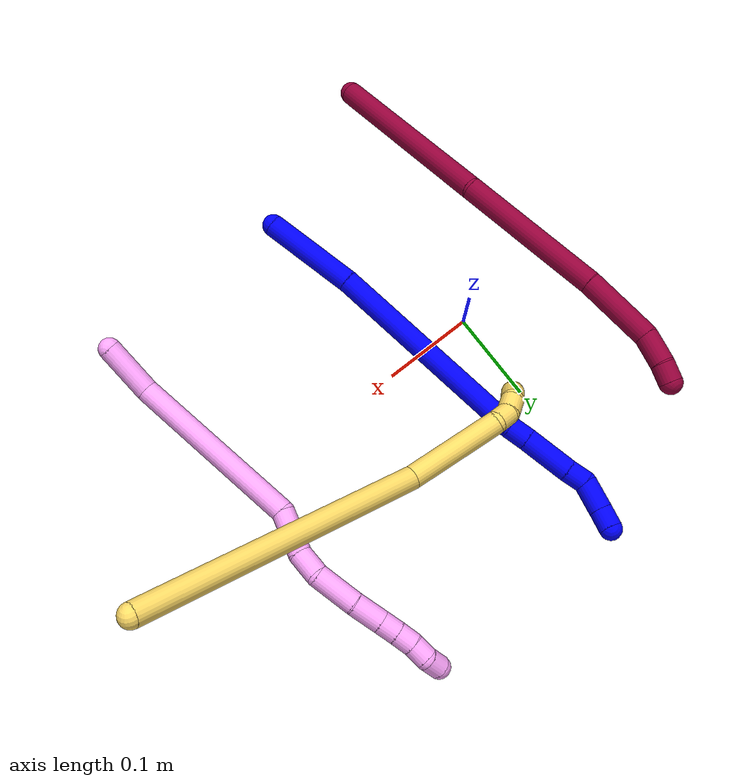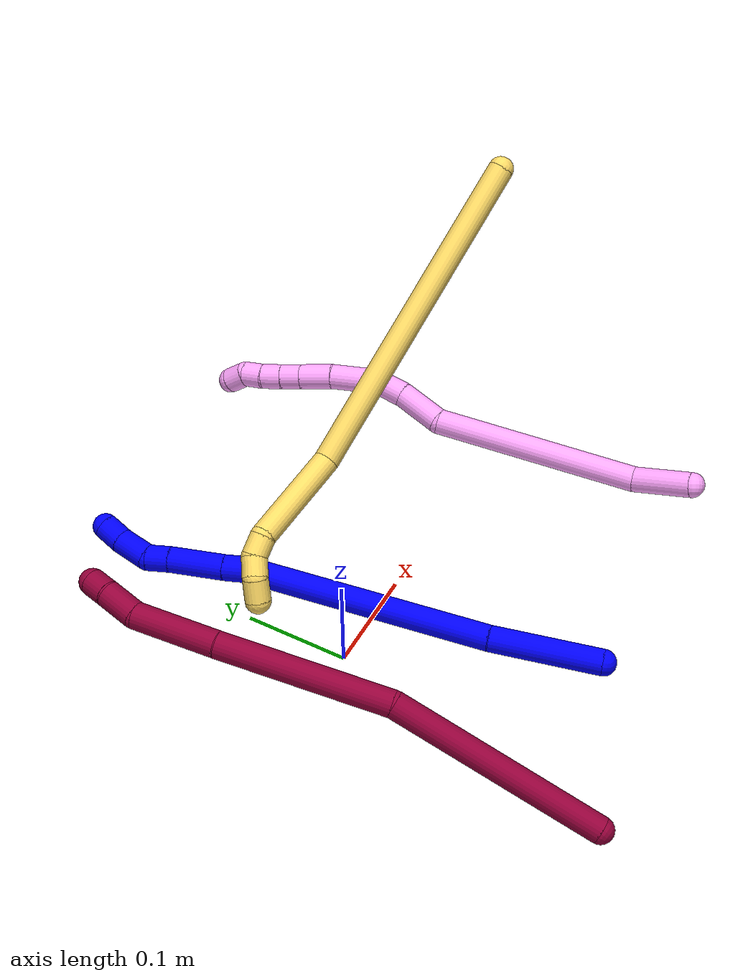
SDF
<sdf version="1.7">
 <world name="default">
  <model name="photoneo_s_sensor">
   <static>1</static>
   <pose>0 0 2 1.57079 1.57079 3.14159</pose>
   <link name="link">
    <inertial><mass>0.1</mass></inertial>
    <sensor name="sensor" type="depth">
     <update_rate>30</update_rate>
     <camera>
      <horizontal_fov>1.22</horizontal_fov>
      <image><width>1920</width><height>1200</height><format>B8G8R8</format></image>
      <clip><near>0.1</near><far>4</far></clip>
      <depth_camera><output>points</output></depth_camera>
     </camera>
     <plugin name="camera_plugin" filename="libgazebo_ros_depth_camera.so">
      <baseline>0.2</baseline>
      <alwaysOn>1</alwaysOn>
      <updateRate>0.0</updateRate>
      <cameraName>camera_ir</cameraName>
      <imageTopicName>/camera/color/image_raw</imageTopicName>
      <cameraInfoTopicName>/camera/color/camera_info</cameraInfoTopicName>
      <depthImageTopicName>/camera/depth/image_raw</depthImageTopicName>
      <depthImageCameraInfoTopicName>/camera/depth/camera_info</depthImageCameraInfoTopicName>
      <pointCloudTopicName>/camera/depth/points</pointCloudTopicName>
      <frameName>fr_optical</frameName>
      <pointCloudCutoff>0.1</pointCloudCutoff>
      <pointCloudCutoffMax>2.0</pointCloudCutoffMax>
      <distortionK1>0</distortionK1>
      <distortionK2>0</distortionK2>
      <distortionK3>0</distortionK3>
      <distortionT1>0</distortionT1>
      <distortionT2>0</distortionT2>
      <CxPrime>0</CxPrime>
      <Cx>0</Cx>
      <Cy>0</Cy>
      <focalLength>0</focalLength>
      <hackBaseline>0</hackBaseline>
     </plugin>
    </sensor>
   </link>
  </model>
  <model name="bin">
   <static>1</static>
   <link name="bottom">
    <collision name="collision-bottom">
     <pose>0 0 -0.01 0 -0 0</pose>
     <geometry><box><size>0.8 0.6 0.02</size></box></geometry>
     <surface>
      <friction><ode><mu>100</mu><mu2>100</mu2></ode></friction>
      <contact><collide_bitmask>65535</collide_bitmask></contact>
     </surface>
    </collision>
   </link>
   <link name="west_wall">
    <collision name="collision-west_wall">
     <pose>-0.41 0 0.1 0 -0 0</pose>
     <geometry><box><size>0.02 0.6 0.2</size></box></geometry>
     <surface>
      <friction><ode><mu>100</mu><mu2>100</mu2></ode></friction>
      <contact><collide_bitmask>65535</collide_bitmask></contact>
     </surface>
    </collision>
   </link>
   <link name="east_wall">
    <collision name="collision-east_wall">
     <pose>0.41 0 0.1 0 -0 0</pose>
     <geometry><box><size>0.02 0.6 0.2</size></box></geometry>
     <surface>
      <friction><ode><mu>100</mu><mu2>100</mu2></ode></friction>
      <contact><collide_bitmask>65535</collide_bitmask></contact>
     </surface>
    </collision>
   </link>
   <link name="south_wall">
    <collision name="collision-south_wall">
     <pose>0 -0.31 0.1 0 -0 0</pose>
     <geometry><box><size>0.8 0.02 0.2</size></box></geometry>
     <surface>
      <friction><ode><mu>100</mu><mu2>100</mu2></ode></friction>
      <contact><collide_bitmask>65535</collide_bitmask></contact>
     </surface>
    </collision>
   </link>
   <link name="north_wall">
    <collision name="collision-north_wall">
     <pose>0 0.31 0.1 0 -0 0</pose>
     <geometry><box><size>0.8 0.02 0.2</size></box></geometry>
     <surface>
      <friction><ode><mu>100</mu><mu2>100</mu2></ode></friction>
      <contact><collide_bitmask>65535</collide_bitmask></contact>
     </surface>
    </collision>
   </link>
  </model>
  <model name="1">
   <static>0</static>
   <link name="1">
    <collision name="collision-cylinder-e_1_1_4">
     <pose>-0.013646 0.050026 -0.011693 -1.80041 -0.259615 0.32622</pose>
     <geometry><cylinder><radius>0.0125</radius><length>0.106312</length></cylinder></geometry>
     <surface>
      <friction><ode><mu>1.16</mu><mu2>1.16</mu2><slip1>0</slip1><slip2>0</slip2></ode></friction>
      <contact><ode><kp>1e+06</kp><kd>1</kd><max_vel>0</max_vel><min_depth>0.001</min_depth></ode></contact>
     </surface>
    </collision>
    <visual name="visual-cylinder-e_1_1_4">
     <pose>-0.013646 0.050026 -0.011693 -1.80041 -0.259615 0.32622</pose>
     <geometry><cylinder><radius>0.0125</radius><length>0.106312</length></cylinder></geometry>
     <material><ambient>0 0 1 1</ambient></material>
    </visual>
    <collision name="collision-cylinder-e_2_4_5">
     <pose>-0.047855 0.214343 -0.050477 -1.80354 -0.173316 0.218873</pose>
     <geometry><cylinder><radius>0.0125</radius><length>0.238487</length></cylinder></geometry>
     <surface>
      <friction><ode><mu>1.16</mu><mu2>1.16</mu2><slip1>0</slip1><slip2>0</slip2></ode></friction>
      <contact><ode><kp>1e+06</kp><kd>1</kd><max_vel>0</max_vel><min_depth>0.001</min_depth></ode></contact>
     </surface>
    </collision>
    <visual name="visual-cylinder-e_2_4_5">
     <pose>-0.047855 0.214343 -0.050477 -1.80354 -0.173316 0.218873</pose>
     <geometry><cylinder><radius>0.0125</radius><length>0.238487</length></cylinder></geometry>
     <material><ambient>0 0 1 1</ambient></material>
    </visual>
    <collision name="collision-cylinder-e_3_5_6">
     <pose>-0.071881 0.338838 -0.08126 -1.918 -0.308883 0.436717</pose>
     <geometry><cylinder><radius>0.0125</radius><length>0.022782</length></cylinder></geometry>
     <surface>
      <friction><ode><mu>1.16</mu><mu2>1.16</mu2><slip1>0</slip1><slip2>0</slip2></ode></friction>
      <contact><ode><kp>1e+06</kp><kd>1</kd><max_vel>0</max_vel><min_depth>0.001</min_depth></ode></contact>
     </surface>
    </collision>
    <visual name="visual-cylinder-e_3_5_6">
     <pose>-0.071881 0.338838 -0.08126 -1.918 -0.308883 0.436717</pose>
     <geometry><cylinder><radius>0.0125</radius><length>0.022782</length></cylinder></geometry>
     <material><ambient>0 0 1 1</ambient></material>
    </visual>
    <collision name="collision-cylinder-e_4_6_7">
     <pose>-0.082468 0.373769 -0.093 -1.88543 -0.267415 0.366308</pose>
     <geometry><cylinder><radius>0.0125</radius><length>0.053924</length></cylinder></geometry>
     <surface>
      <friction><ode><mu>1.16</mu><mu2>1.16</mu2><slip1>0</slip1><slip2>0</slip2></ode></friction>
      <contact><ode><kp>1e+06</kp><kd>1</kd><max_vel>0</max_vel><min_depth>0.001</min_depth></ode></contact>
     </surface>
    </collision>
    <visual name="visual-cylinder-e_4_6_7">
     <pose>-0.082468 0.373769 -0.093 -1.88543 -0.267415 0.366308</pose>
     <geometry><cylinder><radius>0.0125</radius><length>0.053924</length></cylinder></geometry>
     <material><ambient>0 0 1 1</ambient></material>
    </visual>
    <collision name="collision-cylinder-e_5_7_8">
     <pose>-0.093314 0.408548 -0.104611 -1.91154 -0.335732 0.470872</pose>
     <geometry><cylinder><radius>0.0125</radius><length>0.022591</length></cylinder></geometry>
     <surface>
      <friction><ode><mu>1.16</mu><mu2>1.16</mu2><slip1>0</slip1><slip2>0</slip2></ode></friction>
      <contact><ode><kp>1e+06</kp><kd>1</kd><max_vel>0</max_vel><min_depth>0.001</min_depth></ode></contact>
     </surface>
    </collision>
    <visual name="visual-cylinder-e_5_7_8">
     <pose>-0.093314 0.408548 -0.104611 -1.91154 -0.335732 0.470872</pose>
     <geometry><cylinder><radius>0.0125</radius><length>0.022591</length></cylinder></geometry>
     <material><ambient>0 0 1 1</ambient></material>
    </visual>
    <collision name="collision-cylinder-e_6_8_9">
     <pose>-0.094324 0.434439 -0.11201 -1.80833 0.164871 -0.209258</pose>
     <geometry><cylinder><radius>0.0125</radius><length>0.033042</length></cylinder></geometry>
     <surface>
      <friction><ode><mu>1.16</mu><mu2>1.16</mu2><slip1>0</slip1><slip2>0</slip2></ode></friction>
      <contact><ode><kp>1e+06</kp><kd>1</kd><max_vel>0</max_vel><min_depth>0.001</min_depth></ode></contact>
     </surface>
    </collision>
    <visual name="visual-cylinder-e_6_8_9">
     <pose>-0.094324 0.434439 -0.11201 -1.80833 0.164871 -0.209258</pose>
     <geometry><cylinder><radius>0.0125</radius><length>0.033042</length></cylinder></geometry>
     <material><ambient>0 0 1 1</ambient></material>
    </visual>
    <collision name="collision-cylinder-e_7_9_2">
     <pose>-0.089211 0.461436 -0.116489 -1.62849 0.211664 -0.22414</pose>
     <geometry><cylinder><radius>0.0125</radius><length>0.022862</length></cylinder></geometry>
     <surface>
      <friction><ode><mu>1.16</mu><mu2>1.16</mu2><slip1>0</slip1><slip2>0</slip2></ode></friction>
      <contact><ode><kp>1e+06</kp><kd>1</kd><max_vel>0</max_vel><min_depth>0.001</min_depth></ode></contact>
     </surface>
    </collision>
    <visual name="visual-cylinder-e_7_9_2">
     <pose>-0.089211 0.461436 -0.116489 -1.62849 0.211664 -0.22414</pose>
     <geometry><cylinder><radius>0.0125</radius><length>0.022862</length></cylinder></geometry>
     <material><ambient>0 0 1 1</ambient></material>
    </visual>
    <collision name="collision-sphere-2">
     <pose>-0.086809 0.472593 -0.117134 0 -0 0</pose>
     <geometry><sphere><radius>0.0125</radius></sphere></geometry>
     <surface>
      <friction><ode><mu>1.16</mu><mu2>1.16</mu2><slip1>0</slip1><slip2>0</slip2></ode></friction>
      <contact><ode><kp>1e+06</kp><kd>1</kd><max_vel>0</max_vel><min_depth>0.001</min_depth></ode></contact>
     </surface>
    </collision>
    <visual name="visual-sphere-2">
     <pose>-0.086809 0.472593 -0.117134 0 -0 0</pose>
     <geometry><sphere><radius>0.0125</radius></sphere></geometry>
     <material><ambient>0 0 1 1</ambient></material>
    </visual>
    <collision name="collision-sphere-9">
     <pose>-0.091612 0.450278 -0.115845 0 -0 0</pose>
     <geometry><sphere><radius>0.0125</radius></sphere></geometry>
     <surface>
      <friction><ode><mu>1.16</mu><mu2>1.16</mu2><slip1>0</slip1><slip2>0</slip2></ode></friction>
      <contact><ode><kp>1e+06</kp><kd>1</kd><max_vel>0</max_vel><min_depth>0.001</min_depth></ode></contact>
     </surface>
    </collision>
    <visual name="visual-sphere-9">
     <pose>-0.091612 0.450278 -0.115845 0 -0 0</pose>
     <geometry><sphere><radius>0.0125</radius></sphere></geometry>
     <material><ambient>0 0 1 1</ambient></material>
    </visual>
    <collision name="collision-sphere-4">
     <pose>-0.027291 0.100052 -0.023386 0 -0 0</pose>
     <geometry><sphere><radius>0.0125</radius></sphere></geometry>
     <surface>
      <friction><ode><mu>1.16</mu><mu2>1.16</mu2><slip1>0</slip1><slip2>0</slip2></ode></friction>
      <contact><ode><kp>1e+06</kp><kd>1</kd><max_vel>0</max_vel><min_depth>0.001</min_depth></ode></contact>
     </surface>
    </collision>
    <visual name="visual-sphere-4">
     <pose>-0.027291 0.100052 -0.023386 0 -0 0</pose>
     <geometry><sphere><radius>0.0125</radius></sphere></geometry>
     <material><ambient>0 0 1 1</ambient></material>
    </visual>
    <collision name="collision-sphere-1">
     <geometry><sphere><radius>0.0125</radius></sphere></geometry>
     <surface>
      <friction><ode><mu>1.16</mu><mu2>1.16</mu2><slip1>0</slip1><slip2>0</slip2></ode></friction>
      <contact><ode><kp>1e+06</kp><kd>1</kd><max_vel>0</max_vel><min_depth>0.001</min_depth></ode></contact>
     </surface>
    </collision>
    <visual name="visual-sphere-1">
     <geometry><sphere><radius>0.0125</radius></sphere></geometry>
     <material><ambient>0 0 1 1</ambient></material>
    </visual>
    <collision name="collision-sphere-8">
     <pose>-0.097035 0.418599 -0.108175 0 -0 0</pose>
     <geometry><sphere><radius>0.0125</radius></sphere></geometry>
     <surface>
      <friction><ode><mu>1.16</mu><mu2>1.16</mu2><slip1>0</slip1><slip2>0</slip2></ode></friction>
      <contact><ode><kp>1e+06</kp><kd>1</kd><max_vel>0</max_vel><min_depth>0.001</min_depth></ode></contact>
     </surface>
    </collision>
    <visual name="visual-sphere-8">
     <pose>-0.097035 0.418599 -0.108175 0 -0 0</pose>
     <geometry><sphere><radius>0.0125</radius></sphere></geometry>
     <material><ambient>0 0 1 1</ambient></material>
    </visual>
    <collision name="collision-sphere-5">
     <pose>-0.068418 0.328633 -0.077567 0 -0 0</pose>
     <geometry><sphere><radius>0.0125</radius></sphere></geometry>
     <surface>
      <friction><ode><mu>1.16</mu><mu2>1.16</mu2><slip1>0</slip1><slip2>0</slip2></ode></friction>
      <contact><ode><kp>1e+06</kp><kd>1</kd><max_vel>0</max_vel><min_depth>0.001</min_depth></ode></contact>
     </surface>
    </collision>
    <visual name="visual-sphere-5">
     <pose>-0.068418 0.328633 -0.077567 0 -0 0</pose>
     <geometry><sphere><radius>0.0125</radius></sphere></geometry>
     <material><ambient>0 0 1 1</ambient></material>
    </visual>
    <collision name="collision-sphere-6">
     <pose>-0.075344 0.349042 -0.084953 0 -0 0</pose>
     <geometry><sphere><radius>0.0125</radius></sphere></geometry>
     <surface>
      <friction><ode><mu>1.16</mu><mu2>1.16</mu2><slip1>0</slip1><slip2>0</slip2></ode></friction>
      <contact><ode><kp>1e+06</kp><kd>1</kd><max_vel>0</max_vel><min_depth>0.001</min_depth></ode></contact>
     </surface>
    </collision>
    <visual name="visual-sphere-6">
     <pose>-0.075344 0.349042 -0.084953 0 -0 0</pose>
     <geometry><sphere><radius>0.0125</radius></sphere></geometry>
     <material><ambient>0 0 1 1</ambient></material>
    </visual>
    <collision name="collision-sphere-7">
     <pose>-0.089593 0.398496 -0.101047 0 -0 0</pose>
     <geometry><sphere><radius>0.0125</radius></sphere></geometry>
     <surface>
      <friction><ode><mu>1.16</mu><mu2>1.16</mu2><slip1>0</slip1><slip2>0</slip2></ode></friction>
      <contact><ode><kp>1e+06</kp><kd>1</kd><max_vel>0</max_vel><min_depth>0.001</min_depth></ode></contact>
     </surface>
    </collision>
    <visual name="visual-sphere-7">
     <pose>-0.089593 0.398496 -0.101047 0 -0 0</pose>
     <geometry><sphere><radius>0.0125</radius></sphere></geometry>
     <material><ambient>0 0 1 1</ambient></material>
    </visual>
    <inertial>
     <pose>-0.052425 0.236889 -0.05775 0 -0 0</pose>
     <mass>0.5</mass>
     <inertia>
      <ixx>0.001489</ixx>
      <ixy>0</ixy>
      <ixz>0</ixz>
      <iyy>8.5e-05</iyy>
      <iyz>0</iyz>
      <izz>-0.000995</izz>
     </inertia>
    </inertial>
   </link>
   <pose>0.099826 -0.215204 0.011487 0.25276 0.00056 -0.016631</pose>
  </model>
  <model name="4">
   <static>0</static>
   <link name="4">
    <collision name="collision-cylinder-e_1_1_4">
     <pose>0.009885 0.028311 0.00276 -1.47362 0.334465 -0.303946</pose>
     <geometry><cylinder><radius>0.0125</radius><length>0.060229</length></cylinder></geometry>
     <surface>
      <friction><ode><mu>1.16</mu><mu2>1.16</mu2><slip1>0</slip1><slip2>0</slip2></ode></friction>
      <contact><ode><kp>1e+06</kp><kd>1</kd><max_vel>0</max_vel><min_depth>0.001</min_depth></ode></contact>
     </surface>
    </collision>
    <visual name="visual-cylinder-e_1_1_4">
     <pose>0.009885 0.028311 0.00276 -1.47362 0.334465 -0.303946</pose>
     <geometry><cylinder><radius>0.0125</radius><length>0.060229</length></cylinder></geometry>
     <material><ambient>1 0.65098 0.996078 1</ambient></material>
    </visual>
    <collision name="collision-cylinder-e_2_4_5">
     <pose>0.017518 0.153994 0.032244 -1.30293 -0.022313 0.017015</pose>
     <geometry><cylinder><radius>0.0125</radius><length>0.201994</length></cylinder></geometry>
     <surface>
      <friction><ode><mu>1.16</mu><mu2>1.16</mu2><slip1>0</slip1><slip2>0</slip2></ode></friction>
      <contact><ode><kp>1e+06</kp><kd>1</kd><max_vel>0</max_vel><min_depth>0.001</min_depth></ode></contact>
     </surface>
    </collision>
    <visual name="visual-cylinder-e_2_4_5">
     <pose>0.017518 0.153994 0.032244 -1.30293 -0.022313 0.017015</pose>
     <geometry><cylinder><radius>0.0125</radius><length>0.201994</length></cylinder></geometry>
     <material><ambient>1 0.65098 0.996078 1</ambient></material>
    </visual>
    <collision name="collision-cylinder-e_3_5_6">
     <pose>0.021252 0.270238 0.072485 -0.949321 0.252455 -0.130231</pose>
     <geometry><cylinder><radius>0.0125</radius><length>0.047948</length></cylinder></geometry>
     <surface>
      <friction><ode><mu>1.16</mu><mu2>1.16</mu2><slip1>0</slip1><slip2>0</slip2></ode></friction>
      <contact><ode><kp>1e+06</kp><kd>1</kd><max_vel>0</max_vel><min_depth>0.001</min_depth></ode></contact>
     </surface>
    </collision>
    <visual name="visual-cylinder-e_3_5_6">
     <pose>0.021252 0.270238 0.072485 -0.949321 0.252455 -0.130231</pose>
     <geometry><cylinder><radius>0.0125</radius><length>0.047948</length></cylinder></geometry>
     <material><ambient>1 0.65098 0.996078 1</ambient></material>
    </visual>
    <collision name="collision-cylinder-e_4_6_7">
     <pose>0.026803 0.30225 0.09248 -1.11261 -0.029879 0.01858</pose>
     <geometry><cylinder><radius>0.0125</radius><length>0.02931</length></cylinder></geometry>
     <surface>
      <friction><ode><mu>1.16</mu><mu2>1.16</mu2><slip1>0</slip1><slip2>0</slip2></ode></friction>
      <contact><ode><kp>1e+06</kp><kd>1</kd><max_vel>0</max_vel><min_depth>0.001</min_depth></ode></contact>
     </surface>
    </collision>
    <visual name="visual-cylinder-e_4_6_7">
     <pose>0.026803 0.30225 0.09248 -1.11261 -0.029879 0.01858</pose>
     <geometry><cylinder><radius>0.0125</radius><length>0.02931</length></cylinder></geometry>
     <material><ambient>1 0.65098 0.996078 1</ambient></material>
    </visual>
    <collision name="collision-cylinder-e_5_7_8">
     <pose>0.027801 0.338859 0.101274 -1.47251 0.06078 -0.055084</pose>
     <geometry><cylinder><radius>0.0125</radius><length>0.047259</length></cylinder></geometry>
     <surface>
      <friction><ode><mu>1.16</mu><mu2>1.16</mu2><slip1>0</slip1><slip2>0</slip2></ode></friction>
      <contact><ode><kp>1e+06</kp><kd>1</kd><max_vel>0</max_vel><min_depth>0.001</min_depth></ode></contact>
     </surface>
    </collision>
    <visual name="visual-cylinder-e_5_7_8">
     <pose>0.027801 0.338859 0.101274 -1.47251 0.06078 -0.055084</pose>
     <geometry><cylinder><radius>0.0125</radius><length>0.047259</length></cylinder></geometry>
     <material><ambient>1 0.65098 0.996078 1</ambient></material>
    </visual>
    <collision name="collision-cylinder-e_6_8_9">
     <pose>0.030901 0.378523 0.10347 -1.57809 0.102482 -0.103231</pose>
     <geometry><cylinder><radius>0.0125</radius><length>0.032556</length></cylinder></geometry>
     <surface>
      <friction><ode><mu>1.16</mu><mu2>1.16</mu2><slip1>0</slip1><slip2>0</slip2></ode></friction>
      <contact><ode><kp>1e+06</kp><kd>1</kd><max_vel>0</max_vel><min_depth>0.001</min_depth></ode></contact>
     </surface>
    </collision>
    <visual name="visual-cylinder-e_6_8_9">
     <pose>0.030901 0.378523 0.10347 -1.57809 0.102482 -0.103231</pose>
     <geometry><cylinder><radius>0.0125</radius><length>0.032556</length></cylinder></geometry>
     <material><ambient>1 0.65098 0.996078 1</ambient></material>
    </visual>
    <collision name="collision-cylinder-e_7_9_10">
     <pose>0.033617 0.404835 0.103291 -1.57687 0.103473 -0.104102</pose>
     <geometry><cylinder><radius>0.0125</radius><length>0.020349</length></cylinder></geometry>
     <surface>
      <friction><ode><mu>1.16</mu><mu2>1.16</mu2><slip1>0</slip1><slip2>0</slip2></ode></friction>
      <contact><ode><kp>1e+06</kp><kd>1</kd><max_vel>0</max_vel><min_depth>0.001</min_depth></ode></contact>
     </surface>
    </collision>
    <visual name="visual-cylinder-e_7_9_10">
     <pose>0.033617 0.404835 0.103291 -1.57687 0.103473 -0.104102</pose>
     <geometry><cylinder><radius>0.0125</radius><length>0.020349</length></cylinder></geometry>
     <material><ambient>1 0.65098 0.996078 1</ambient></material>
    </visual>
    <collision name="collision-cylinder-e_8_10_11">
     <pose>0.035919 0.425013 0.103377 -1.55611 0.123735 -0.121935</pose>
     <geometry><cylinder><radius>0.0125</radius><length>0.020273</length></cylinder></geometry>
     <surface>
      <friction><ode><mu>1.16</mu><mu2>1.16</mu2><slip1>0</slip1><slip2>0</slip2></ode></friction>
      <contact><ode><kp>1e+06</kp><kd>1</kd><max_vel>0</max_vel><min_depth>0.001</min_depth></ode></contact>
     </surface>
    </collision>
    <visual name="visual-cylinder-e_8_10_11">
     <pose>0.035919 0.425013 0.103377 -1.55611 0.123735 -0.121935</pose>
     <geometry><cylinder><radius>0.0125</radius><length>0.020273</length></cylinder></geometry>
     <material><ambient>1 0.65098 0.996078 1</ambient></material>
    </visual>
    <collision name="collision-cylinder-e_9_11_12">
     <pose>0.039372 0.444739 0.104889 -1.43056 0.221779 -0.192865</pose>
     <geometry><cylinder><radius>0.0125</radius><length>0.020017</length></cylinder></geometry>
     <surface>
      <friction><ode><mu>1.16</mu><mu2>1.16</mu2><slip1>0</slip1><slip2>0</slip2></ode></friction>
      <contact><ode><kp>1e+06</kp><kd>1</kd><max_vel>0</max_vel><min_depth>0.001</min_depth></ode></contact>
     </surface>
    </collision>
    <visual name="visual-cylinder-e_9_11_12">
     <pose>0.039372 0.444739 0.104889 -1.43056 0.221779 -0.192865</pose>
     <geometry><cylinder><radius>0.0125</radius><length>0.020017</length></cylinder></geometry>
     <material><ambient>1 0.65098 0.996078 1</ambient></material>
    </visual>
    <collision name="collision-cylinder-e_10_12_2">
     <pose>0.045944 0.462947 0.10332 -1.90173 0.450717 -0.62153</pose>
     <geometry><cylinder><radius>0.0125</radius><length>0.020065</length></cylinder></geometry>
     <surface>
      <friction><ode><mu>1.16</mu><mu2>1.16</mu2><slip1>0</slip1><slip2>0</slip2></ode></friction>
      <contact><ode><kp>1e+06</kp><kd>1</kd><max_vel>0</max_vel><min_depth>0.001</min_depth></ode></contact>
     </surface>
    </collision>
    <visual name="visual-cylinder-e_10_12_2">
     <pose>0.045944 0.462947 0.10332 -1.90173 0.450717 -0.62153</pose>
     <geometry><cylinder><radius>0.0125</radius><length>0.020065</length></cylinder></geometry>
     <material><ambient>1 0.65098 0.996078 1</ambient></material>
    </visual>
    <collision name="collision-sphere-2">
     <pose>0.050314 0.471487 0.100385 0 -0 0</pose>
     <geometry><sphere><radius>0.0125</radius></sphere></geometry>
     <surface>
      <friction><ode><mu>1.16</mu><mu2>1.16</mu2><slip1>0</slip1><slip2>0</slip2></ode></friction>
      <contact><ode><kp>1e+06</kp><kd>1</kd><max_vel>0</max_vel><min_depth>0.001</min_depth></ode></contact>
     </surface>
    </collision>
    <visual name="visual-sphere-2">
     <pose>0.050314 0.471487 0.100385 0 -0 0</pose>
     <geometry><sphere><radius>0.0125</radius></sphere></geometry>
     <material><ambient>1 0.65098 0.996078 1</ambient></material>
    </visual>
    <collision name="collision-sphere-12">
     <pose>0.041573 0.454406 0.106254 0 -0 0</pose>
     <geometry><sphere><radius>0.0125</radius></sphere></geometry>
     <surface>
      <friction><ode><mu>1.16</mu><mu2>1.16</mu2><slip1>0</slip1><slip2>0</slip2></ode></friction>
      <contact><ode><kp>1e+06</kp><kd>1</kd><max_vel>0</max_vel><min_depth>0.001</min_depth></ode></contact>
     </surface>
    </collision>
    <visual name="visual-sphere-12">
     <pose>0.041573 0.454406 0.106254 0 -0 0</pose>
     <geometry><sphere><radius>0.0125</radius></sphere></geometry>
     <material><ambient>1 0.65098 0.996078 1</ambient></material>
    </visual>
    <collision name="collision-sphere-11">
     <pose>0.03717 0.435071 0.103525 0 -0 0</pose>
     <geometry><sphere><radius>0.0125</radius></sphere></geometry>
     <surface>
      <friction><ode><mu>1.16</mu><mu2>1.16</mu2><slip1>0</slip1><slip2>0</slip2></ode></friction>
      <contact><ode><kp>1e+06</kp><kd>1</kd><max_vel>0</max_vel><min_depth>0.001</min_depth></ode></contact>
     </surface>
    </collision>
    <visual name="visual-sphere-11">
     <pose>0.03717 0.435071 0.103525 0 -0 0</pose>
     <geometry><sphere><radius>0.0125</radius></sphere></geometry>
     <material><ambient>1 0.65098 0.996078 1</ambient></material>
    </visual>
    <collision name="collision-sphere-10">
     <pose>0.034668 0.414955 0.103229 0 -0 0</pose>
     <geometry><sphere><radius>0.0125</radius></sphere></geometry>
     <surface>
      <friction><ode><mu>1.16</mu><mu2>1.16</mu2><slip1>0</slip1><slip2>0</slip2></ode></friction>
      <contact><ode><kp>1e+06</kp><kd>1</kd><max_vel>0</max_vel><min_depth>0.001</min_depth></ode></contact>
     </surface>
    </collision>
    <visual name="visual-sphere-10">
     <pose>0.034668 0.414955 0.103229 0 -0 0</pose>
     <geometry><sphere><radius>0.0125</radius></sphere></geometry>
     <material><ambient>1 0.65098 0.996078 1</ambient></material>
    </visual>
    <collision name="collision-sphere-9">
     <pose>0.032566 0.394716 0.103352 0 -0 0</pose>
     <geometry><sphere><radius>0.0125</radius></sphere></geometry>
     <surface>
      <friction><ode><mu>1.16</mu><mu2>1.16</mu2><slip1>0</slip1><slip2>0</slip2></ode></friction>
      <contact><ode><kp>1e+06</kp><kd>1</kd><max_vel>0</max_vel><min_depth>0.001</min_depth></ode></contact>
     </surface>
    </collision>
    <visual name="visual-sphere-9">
     <pose>0.032566 0.394716 0.103352 0 -0 0</pose>
     <geometry><sphere><radius>0.0125</radius></sphere></geometry>
     <material><ambient>1 0.65098 0.996078 1</ambient></material>
    </visual>
    <collision name="collision-sphere-4">
     <pose>0.019771 0.056623 0.00552 0 -0 0</pose>
     <geometry><sphere><radius>0.0125</radius></sphere></geometry>
     <surface>
      <friction><ode><mu>1.16</mu><mu2>1.16</mu2><slip1>0</slip1><slip2>0</slip2></ode></friction>
      <contact><ode><kp>1e+06</kp><kd>1</kd><max_vel>0</max_vel><min_depth>0.001</min_depth></ode></contact>
     </surface>
    </collision>
    <visual name="visual-sphere-4">
     <pose>0.019771 0.056623 0.00552 0 -0 0</pose>
     <geometry><sphere><radius>0.0125</radius></sphere></geometry>
     <material><ambient>1 0.65098 0.996078 1</ambient></material>
    </visual>
    <collision name="collision-sphere-1">
     <geometry><sphere><radius>0.0125</radius></sphere></geometry>
     <surface>
      <friction><ode><mu>1.16</mu><mu2>1.16</mu2><slip1>0</slip1><slip2>0</slip2></ode></friction>
      <contact><ode><kp>1e+06</kp><kd>1</kd><max_vel>0</max_vel><min_depth>0.001</min_depth></ode></contact>
     </surface>
    </collision>
    <visual name="visual-sphere-1">
     <geometry><sphere><radius>0.0125</radius></sphere></geometry>
     <material><ambient>1 0.65098 0.996078 1</ambient></material>
    </visual>
    <collision name="collision-sphere-8">
     <pose>0.029236 0.362331 0.103589 0 -0 0</pose>
     <geometry><sphere><radius>0.0125</radius></sphere></geometry>
     <surface>
      <friction><ode><mu>1.16</mu><mu2>1.16</mu2><slip1>0</slip1><slip2>0</slip2></ode></friction>
      <contact><ode><kp>1e+06</kp><kd>1</kd><max_vel>0</max_vel><min_depth>0.001</min_depth></ode></contact>
     </surface>
    </collision>
    <visual name="visual-sphere-8">
     <pose>0.029236 0.362331 0.103589 0 -0 0</pose>
     <geometry><sphere><radius>0.0125</radius></sphere></geometry>
     <material><ambient>1 0.65098 0.996078 1</ambient></material>
    </visual>
    <collision name="collision-sphere-5">
     <pose>0.015264 0.251365 0.058969 0 -0 0</pose>
     <geometry><sphere><radius>0.0125</radius></sphere></geometry>
     <surface>
      <friction><ode><mu>1.16</mu><mu2>1.16</mu2><slip1>0</slip1><slip2>0</slip2></ode></friction>
      <contact><ode><kp>1e+06</kp><kd>1</kd><max_vel>0</max_vel><min_depth>0.001</min_depth></ode></contact>
     </surface>
    </collision>
    <visual name="visual-sphere-5">
     <pose>0.015264 0.251365 0.058969 0 -0 0</pose>
     <geometry><sphere><radius>0.0125</radius></sphere></geometry>
     <material><ambient>1 0.65098 0.996078 1</ambient></material>
    </visual>
    <collision name="collision-sphere-6">
     <pose>0.027241 0.289112 0.086001 0 -0 0</pose>
     <geometry><sphere><radius>0.0125</radius></sphere></geometry>
     <surface>
      <friction><ode><mu>1.16</mu><mu2>1.16</mu2><slip1>0</slip1><slip2>0</slip2></ode></friction>
      <contact><ode><kp>1e+06</kp><kd>1</kd><max_vel>0</max_vel><min_depth>0.001</min_depth></ode></contact>
     </surface>
    </collision>
    <visual name="visual-sphere-6">
     <pose>0.027241 0.289112 0.086001 0 -0 0</pose>
     <geometry><sphere><radius>0.0125</radius></sphere></geometry>
     <material><ambient>1 0.65098 0.996078 1</ambient></material>
    </visual>
    <collision name="collision-sphere-7">
     <pose>0.026365 0.315387 0.09896 0 -0 0</pose>
     <geometry><sphere><radius>0.0125</radius></sphere></geometry>
     <surface>
      <friction><ode><mu>1.16</mu><mu2>1.16</mu2><slip1>0</slip1><slip2>0</slip2></ode></friction>
      <contact><ode><kp>1e+06</kp><kd>1</kd><max_vel>0</max_vel><min_depth>0.001</min_depth></ode></contact>
     </surface>
    </collision>
    <visual name="visual-sphere-7">
     <pose>0.026365 0.315387 0.09896 0 -0 0</pose>
     <geometry><sphere><radius>0.0125</radius></sphere></geometry>
     <material><ambient>1 0.65098 0.996078 1</ambient></material>
    </visual>
    <inertial>
     <pose>0.022761 0.236021 0.058781 0 -0 0</pose>
     <mass>0.5</mass>
     <inertia>
      <ixx>0.000753</ixx>
      <ixy>0</ixy>
      <ixz>0</ixz>
      <iyy>0.000237</iyy>
      <iyz>0</iyz>
      <izz>-0.000709</izz>
     </inertia>
    </inertial>
   </link>
   <pose>0.325208 -0.206362 0.028454 -0.137081 0.87442 0.275096</pose>
  </model>
  <model name="5">
   <static>0</static>
   <link name="5">
    <collision name="collision-cylinder-e_1_1_4">
     <pose>-0.154737 0.043815 0.039171 -0.841291 -1.20781 0.598688</pose>
     <geometry><cylinder><radius>0.0125</radius><length>0.331045</length></cylinder></geometry>
     <surface>
      <friction><ode><mu>1.16</mu><mu2>1.16</mu2><slip1>0</slip1><slip2>0</slip2></ode></friction>
      <contact><ode><kp>1e+06</kp><kd>1</kd><max_vel>0</max_vel><min_depth>0.001</min_depth></ode></contact>
     </surface>
    </collision>
    <visual name="visual-cylinder-e_1_1_4">
     <pose>-0.154737 0.043815 0.039171 -0.841291 -1.20781 0.598688</pose>
     <geometry><cylinder><radius>0.0125</radius><length>0.331045</length></cylinder></geometry>
     <material><ambient>1 0.858824 0.4 1</ambient></material>
    </visual>
    <collision name="collision-cylinder-e_2_4_5">
     <pose>-0.361501 0.089434 0.068497 -2.96036 -1.38072 2.92244</pose>
     <geometry><cylinder><radius>0.0125</radius><length>0.105962</length></cylinder></geometry>
     <surface>
      <friction><ode><mu>1.16</mu><mu2>1.16</mu2><slip1>0</slip1><slip2>0</slip2></ode></friction>
      <contact><ode><kp>1e+06</kp><kd>1</kd><max_vel>0</max_vel><min_depth>0.001</min_depth></ode></contact>
     </surface>
    </collision>
    <visual name="visual-cylinder-e_2_4_5">
     <pose>-0.361501 0.089434 0.068497 -2.96036 -1.38072 2.92244</pose>
     <geometry><cylinder><radius>0.0125</radius><length>0.105962</length></cylinder></geometry>
     <material><ambient>1 0.858824 0.4 1</ambient></material>
    </visual>
    <collision name="collision-cylinder-e_3_5_6">
     <pose>-0.422997 0.095123 0.059986 -1.23981 -1.16147 0.876079</pose>
     <geometry><cylinder><radius>0.0125</radius><length>0.020644</length></cylinder></geometry>
     <surface>
      <friction><ode><mu>1.16</mu><mu2>1.16</mu2><slip1>0</slip1><slip2>0</slip2></ode></friction>
      <contact><ode><kp>1e+06</kp><kd>1</kd><max_vel>0</max_vel><min_depth>0.001</min_depth></ode></contact>
     </surface>
    </collision>
    <visual name="visual-cylinder-e_3_5_6">
     <pose>-0.422997 0.095123 0.059986 -1.23981 -1.16147 0.876079</pose>
     <geometry><cylinder><radius>0.0125</radius><length>0.020644</length></cylinder></geometry>
     <material><ambient>1 0.858824 0.4 1</ambient></material>
    </visual>
    <collision name="collision-cylinder-e_4_6_7">
     <pose>-0.439439 0.106183 0.060792 -1.64443 -0.769736 0.822381</pose>
     <geometry><cylinder><radius>0.0125</radius><length>0.020038</length></cylinder></geometry>
     <surface>
      <friction><ode><mu>1.16</mu><mu2>1.16</mu2><slip1>0</slip1><slip2>0</slip2></ode></friction>
      <contact><ode><kp>1e+06</kp><kd>1</kd><max_vel>0</max_vel><min_depth>0.001</min_depth></ode></contact>
     </surface>
    </collision>
    <visual name="visual-cylinder-e_4_6_7">
     <pose>-0.439439 0.106183 0.060792 -1.64443 -0.769736 0.822381</pose>
     <geometry><cylinder><radius>0.0125</radius><length>0.020038</length></cylinder></geometry>
     <material><ambient>1 0.858824 0.4 1</ambient></material>
    </visual>
    <collision name="collision-cylinder-e_5_7_2">
     <pose>-0.451883 0.122368 0.063915 -1.18564 -0.512632 0.3495</pose>
     <geometry><cylinder><radius>0.0125</radius><length>0.022311</length></cylinder></geometry>
     <surface>
      <friction><ode><mu>1.16</mu><mu2>1.16</mu2><slip1>0</slip1><slip2>0</slip2></ode></friction>
      <contact><ode><kp>1e+06</kp><kd>1</kd><max_vel>0</max_vel><min_depth>0.001</min_depth></ode></contact>
     </surface>
    </collision>
    <visual name="visual-cylinder-e_5_7_2">
     <pose>-0.451883 0.122368 0.063915 -1.18564 -0.512632 0.3495</pose>
     <geometry><cylinder><radius>0.0125</radius><length>0.022311</length></cylinder></geometry>
     <material><ambient>1 0.858824 0.4 1</ambient></material>
    </visual>
    <collision name="collision-sphere-2">
     <pose>-0.457355 0.131377 0.067567 0 -0 0</pose>
     <geometry><sphere><radius>0.0125</radius></sphere></geometry>
     <surface>
      <friction><ode><mu>1.16</mu><mu2>1.16</mu2><slip1>0</slip1><slip2>0</slip2></ode></friction>
      <contact><ode><kp>1e+06</kp><kd>1</kd><max_vel>0</max_vel><min_depth>0.001</min_depth></ode></contact>
     </surface>
    </collision>
    <visual name="visual-sphere-2">
     <pose>-0.457355 0.131377 0.067567 0 -0 0</pose>
     <geometry><sphere><radius>0.0125</radius></sphere></geometry>
     <material><ambient>1 0.858824 0.4 1</ambient></material>
    </visual>
    <collision name="collision-sphere-7">
     <pose>-0.446412 0.113358 0.060262 0 -0 0</pose>
     <geometry><sphere><radius>0.0125</radius></sphere></geometry>
     <surface>
      <friction><ode><mu>1.16</mu><mu2>1.16</mu2><slip1>0</slip1><slip2>0</slip2></ode></friction>
      <contact><ode><kp>1e+06</kp><kd>1</kd><max_vel>0</max_vel><min_depth>0.001</min_depth></ode></contact>
     </surface>
    </collision>
    <visual name="visual-sphere-7">
     <pose>-0.446412 0.113358 0.060262 0 -0 0</pose>
     <geometry><sphere><radius>0.0125</radius></sphere></geometry>
     <material><ambient>1 0.858824 0.4 1</ambient></material>
    </visual>
    <collision name="collision-sphere-6">
     <pose>-0.432466 0.099008 0.061321 0 -0 0</pose>
     <geometry><sphere><radius>0.0125</radius></sphere></geometry>
     <surface>
      <friction><ode><mu>1.16</mu><mu2>1.16</mu2><slip1>0</slip1><slip2>0</slip2></ode></friction>
      <contact><ode><kp>1e+06</kp><kd>1</kd><max_vel>0</max_vel><min_depth>0.001</min_depth></ode></contact>
     </surface>
    </collision>
    <visual name="visual-sphere-6">
     <pose>-0.432466 0.099008 0.061321 0 -0 0</pose>
     <geometry><sphere><radius>0.0125</radius></sphere></geometry>
     <material><ambient>1 0.858824 0.4 1</ambient></material>
    </visual>
    <collision name="collision-sphere-5">
     <pose>-0.413528 0.091238 0.058651 0 -0 0</pose>
     <geometry><sphere><radius>0.0125</radius></sphere></geometry>
     <surface>
      <friction><ode><mu>1.16</mu><mu2>1.16</mu2><slip1>0</slip1><slip2>0</slip2></ode></friction>
      <contact><ode><kp>1e+06</kp><kd>1</kd><max_vel>0</max_vel><min_depth>0.001</min_depth></ode></contact>
     </surface>
    </collision>
    <visual name="visual-sphere-5">
     <pose>-0.413528 0.091238 0.058651 0 -0 0</pose>
     <geometry><sphere><radius>0.0125</radius></sphere></geometry>
     <material><ambient>1 0.858824 0.4 1</ambient></material>
    </visual>
    <collision name="collision-sphere-1">
     <geometry><sphere><radius>0.0125</radius></sphere></geometry>
     <surface>
      <friction><ode><mu>1.16</mu><mu2>1.16</mu2><slip1>0</slip1><slip2>0</slip2></ode></friction>
      <contact><ode><kp>1e+06</kp><kd>1</kd><max_vel>0</max_vel><min_depth>0.001</min_depth></ode></contact>
     </surface>
    </collision>
    <visual name="visual-sphere-1">
     <geometry><sphere><radius>0.0125</radius></sphere></geometry>
     <material><ambient>1 0.858824 0.4 1</ambient></material>
    </visual>
    <collision name="collision-sphere-4">
     <pose>-0.309474 0.087629 0.078343 0 -0 0</pose>
     <geometry><sphere><radius>0.0125</radius></sphere></geometry>
     <surface>
      <friction><ode><mu>1.16</mu><mu2>1.16</mu2><slip1>0</slip1><slip2>0</slip2></ode></friction>
      <contact><ode><kp>1e+06</kp><kd>1</kd><max_vel>0</max_vel><min_depth>0.001</min_depth></ode></contact>
     </surface>
    </collision>
    <visual name="visual-sphere-4">
     <pose>-0.309474 0.087629 0.078343 0 -0 0</pose>
     <geometry><sphere><radius>0.0125</radius></sphere></geometry>
     <material><ambient>1 0.858824 0.4 1</ambient></material>
    </visual>
    <inertial>
     <pose>-0.2343 0.061606 0.048216 0 -0 0</pose>
     <mass>0.5</mass>
     <inertia>
      <ixx>0.001452</ixx>
      <ixy>0</ixy>
      <ixz>0</ixz>
      <iyy>0.003594</iyy>
      <iyz>0</iyz>
      <izz>0.002138</izz>
     </inertia>
    </inertial>
   </link>
   <pose>0.436812 0.063611 0.236219 -2.46752 -0.190466 -0.218516</pose>
  </model>
  <model name="8">
   <static>0</static>
   <link name="8">
    <collision name="collision-cylinder-e_1_1_4">
     <pose>-0.005448 0.012063 -0.102347 -3.02427 -0.052813 0.845279</pose>
     <geometry><cylinder><radius>0.0125</radius><length>0.206398</length></cylinder></geometry>
     <surface>
      <friction><ode><mu>1.16</mu><mu2>1.16</mu2><slip1>0</slip1><slip2>0</slip2></ode></friction>
      <contact><ode><kp>1e+06</kp><kd>1</kd><max_vel>0</max_vel><min_depth>0.001</min_depth></ode></contact>
     </surface>
    </collision>
    <visual name="visual-cylinder-e_1_1_4">
     <pose>-0.005448 0.012063 -0.102347 -3.02427 -0.052813 0.845279</pose>
     <geometry><cylinder><radius>0.0125</radius><length>0.206398</length></cylinder></geometry>
     <material><ambient>0.584314 0 0.227451 1</ambient></material>
    </visual>
    <collision name="collision-cylinder-e_2_4_5">
     <pose>-0.036907 0.036804 -0.280191 -2.97522 -0.327541 2.20703</pose>
     <geometry><cylinder><radius>0.0125</radius><length>0.161706</length></cylinder></geometry>
     <surface>
      <friction><ode><mu>1.16</mu><mu2>1.16</mu2><slip1>0</slip1><slip2>0</slip2></ode></friction>
      <contact><ode><kp>1e+06</kp><kd>1</kd><max_vel>0</max_vel><min_depth>0.001</min_depth></ode></contact>
     </surface>
    </collision>
    <visual name="visual-cylinder-e_2_4_5">
     <pose>-0.036907 0.036804 -0.280191 -2.97522 -0.327541 2.20703</pose>
     <geometry><cylinder><radius>0.0125</radius><length>0.161706</length></cylinder></geometry>
     <material><ambient>0.584314 0 0.227451 1</ambient></material>
    </visual>
    <collision name="collision-cylinder-e_3_5_6">
     <pose>-0.07747 0.052585 -0.391825 -3.05591 -0.381527 2.70472</pose>
     <geometry><cylinder><radius>0.0125</radius><length>0.07816</length></cylinder></geometry>
     <surface>
      <friction><ode><mu>1.16</mu><mu2>1.16</mu2><slip1>0</slip1><slip2>0</slip2></ode></friction>
      <contact><ode><kp>1e+06</kp><kd>1</kd><max_vel>0</max_vel><min_depth>0.001</min_depth></ode></contact>
     </surface>
    </collision>
    <visual name="visual-cylinder-e_3_5_6">
     <pose>-0.07747 0.052585 -0.391825 -3.05591 -0.381527 2.70472</pose>
     <geometry><cylinder><radius>0.0125</radius><length>0.07816</length></cylinder></geometry>
     <material><ambient>0.584314 0 0.227451 1</ambient></material>
    </visual>
    <collision name="collision-cylinder-e_4_6_7">
     <pose>-0.096051 0.052241 -0.443703 2.92595 -0.245085 -1.69954</pose>
     <geometry><cylinder><radius>0.0125</radius><length>0.033222</length></cylinder></geometry>
     <surface>
      <friction><ode><mu>1.16</mu><mu2>1.16</mu2><slip1>0</slip1><slip2>0</slip2></ode></friction>
      <contact><ode><kp>1e+06</kp><kd>1</kd><max_vel>0</max_vel><min_depth>0.001</min_depth></ode></contact>
     </surface>
    </collision>
    <visual name="visual-cylinder-e_4_6_7">
     <pose>-0.096051 0.052241 -0.443703 2.92595 -0.245085 -1.69954</pose>
     <geometry><cylinder><radius>0.0125</radius><length>0.033222</length></cylinder></geometry>
     <material><ambient>0.584314 0 0.227451 1</ambient></material>
    </visual>
    <collision name="collision-cylinder-e_5_7_2">
     <pose>-0.103942 0.045641 -0.46841 2.80352 -0.385869 -1.70555</pose>
     <geometry><cylinder><radius>0.0125</radius><length>0.020514</length></cylinder></geometry>
     <surface>
      <friction><ode><mu>1.16</mu><mu2>1.16</mu2><slip1>0</slip1><slip2>0</slip2></ode></friction>
      <contact><ode><kp>1e+06</kp><kd>1</kd><max_vel>0</max_vel><min_depth>0.001</min_depth></ode></contact>
     </surface>
    </collision>
    <visual name="visual-cylinder-e_5_7_2">
     <pose>-0.103942 0.045641 -0.46841 2.80352 -0.385869 -1.70555</pose>
     <geometry><cylinder><radius>0.0125</radius><length>0.020514</length></cylinder></geometry>
     <material><ambient>0.584314 0 0.227451 1</ambient></material>
    </visual>
    <collision name="collision-sphere-2">
     <pose>-0.107802 0.042489 -0.477375 0 -0 0</pose>
     <geometry><sphere><radius>0.0125</radius></sphere></geometry>
     <surface>
      <friction><ode><mu>1.16</mu><mu2>1.16</mu2><slip1>0</slip1><slip2>0</slip2></ode></friction>
      <contact><ode><kp>1e+06</kp><kd>1</kd><max_vel>0</max_vel><min_depth>0.001</min_depth></ode></contact>
     </surface>
    </collision>
    <visual name="visual-sphere-2">
     <pose>-0.107802 0.042489 -0.477375 0 -0 0</pose>
     <geometry><sphere><radius>0.0125</radius></sphere></geometry>
     <material><ambient>0.584314 0 0.227451 1</ambient></material>
    </visual>
    <collision name="collision-sphere-7">
     <pose>-0.100081 0.048793 -0.459445 0 -0 0</pose>
     <geometry><sphere><radius>0.0125</radius></sphere></geometry>
     <surface>
      <friction><ode><mu>1.16</mu><mu2>1.16</mu2><slip1>0</slip1><slip2>0</slip2></ode></friction>
      <contact><ode><kp>1e+06</kp><kd>1</kd><max_vel>0</max_vel><min_depth>0.001</min_depth></ode></contact>
     </surface>
    </collision>
    <visual name="visual-sphere-7">
     <pose>-0.100081 0.048793 -0.459445 0 -0 0</pose>
     <geometry><sphere><radius>0.0125</radius></sphere></geometry>
     <material><ambient>0.584314 0 0.227451 1</ambient></material>
    </visual>
    <collision name="collision-sphere-6">
     <pose>-0.092021 0.055689 -0.427962 0 -0 0</pose>
     <geometry><sphere><radius>0.0125</radius></sphere></geometry>
     <surface>
      <friction><ode><mu>1.16</mu><mu2>1.16</mu2><slip1>0</slip1><slip2>0</slip2></ode></friction>
      <contact><ode><kp>1e+06</kp><kd>1</kd><max_vel>0</max_vel><min_depth>0.001</min_depth></ode></contact>
     </surface>
    </collision>
    <visual name="visual-sphere-6">
     <pose>-0.092021 0.055689 -0.427962 0 -0 0</pose>
     <geometry><sphere><radius>0.0125</radius></sphere></geometry>
     <material><ambient>0.584314 0 0.227451 1</ambient></material>
    </visual>
    <collision name="collision-sphere-5">
     <pose>-0.062919 0.049481 -0.355688 0 -0 0</pose>
     <geometry><sphere><radius>0.0125</radius></sphere></geometry>
     <surface>
      <friction><ode><mu>1.16</mu><mu2>1.16</mu2><slip1>0</slip1><slip2>0</slip2></ode></friction>
      <contact><ode><kp>1e+06</kp><kd>1</kd><max_vel>0</max_vel><min_depth>0.001</min_depth></ode></contact>
     </surface>
    </collision>
    <visual name="visual-sphere-5">
     <pose>-0.062919 0.049481 -0.355688 0 -0 0</pose>
     <geometry><sphere><radius>0.0125</radius></sphere></geometry>
     <material><ambient>0.584314 0 0.227451 1</ambient></material>
    </visual>
    <collision name="collision-sphere-1">
     <geometry><sphere><radius>0.0125</radius></sphere></geometry>
     <surface>
      <friction><ode><mu>1.16</mu><mu2>1.16</mu2><slip1>0</slip1><slip2>0</slip2></ode></friction>
      <contact><ode><kp>1e+06</kp><kd>1</kd><max_vel>0</max_vel><min_depth>0.001</min_depth></ode></contact>
     </surface>
    </collision>
    <visual name="visual-sphere-1">
     <geometry><sphere><radius>0.0125</radius></sphere></geometry>
     <material><ambient>0.584314 0 0.227451 1</ambient></material>
    </visual>
    <collision name="collision-sphere-4">
     <pose>-0.010896 0.024126 -0.204694 0 -0 0</pose>
     <geometry><sphere><radius>0.0125</radius></sphere></geometry>
     <surface>
      <friction><ode><mu>1.16</mu><mu2>1.16</mu2><slip1>0</slip1><slip2>0</slip2></ode></friction>
      <contact><ode><kp>1e+06</kp><kd>1</kd><max_vel>0</max_vel><min_depth>0.001</min_depth></ode></contact>
     </surface>
    </collision>
    <visual name="visual-sphere-4">
     <pose>-0.010896 0.024126 -0.204694 0 -0 0</pose>
     <geometry><sphere><radius>0.0125</radius></sphere></geometry>
     <material><ambient>0.584314 0 0.227451 1</ambient></material>
    </visual>
    <inertial>
     <pose>-0.036942 0.030446 -0.242815 0 -0 0</pose>
     <mass>0.5</mass>
     <inertia><ixx>0.001082</ixx><ixy>0</ixy><ixz>0</ixz><iyy>0.000622</iyy><iyz>0</iyz><izz>-1e-05</izz></inertia>
    </inertial>
   </link>
   <pose>-0.065615 -0.28712 0.012865 2.65339 -1.11736 -1.09769</pose>
  </model>
 </world>
</sdf>
